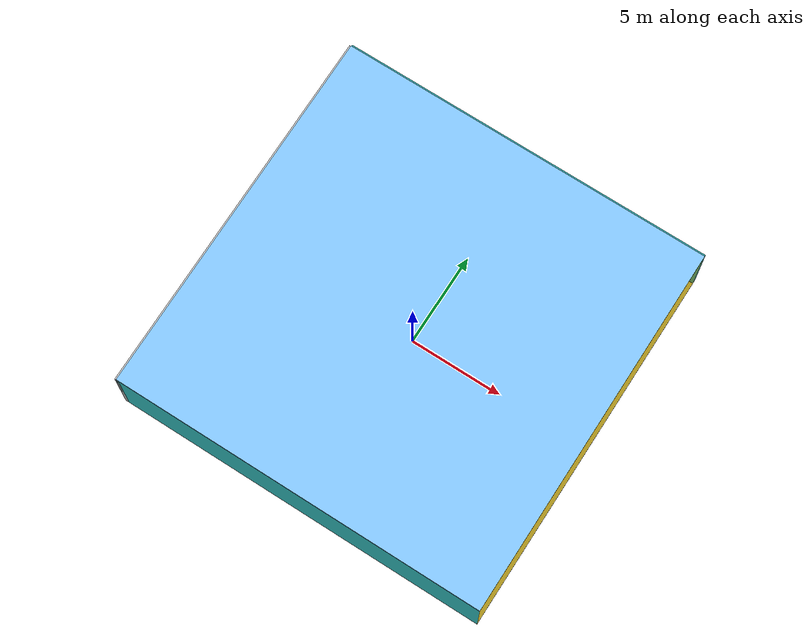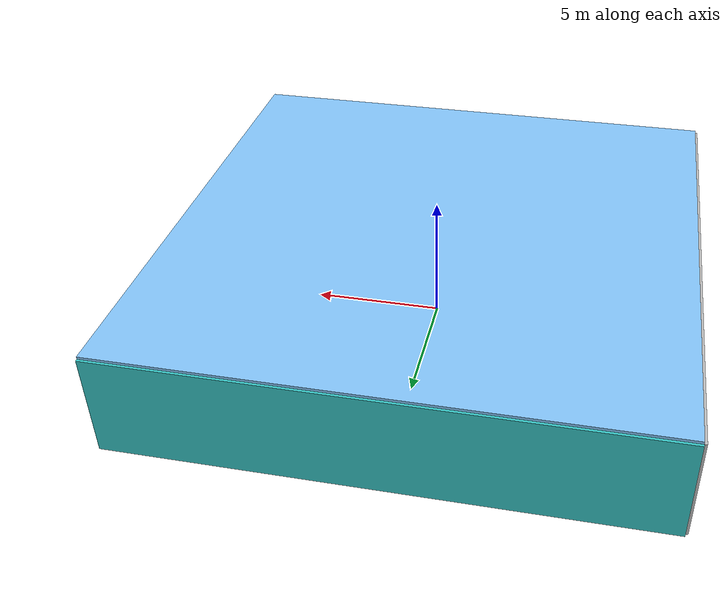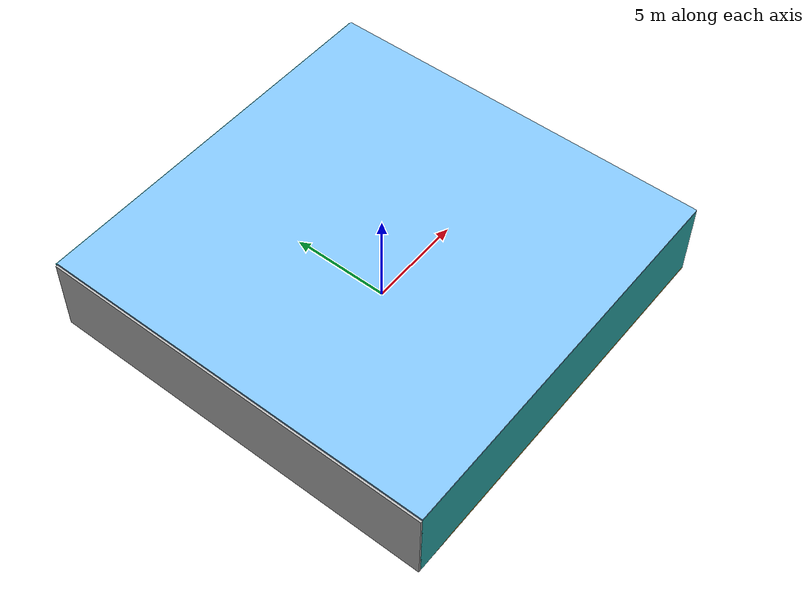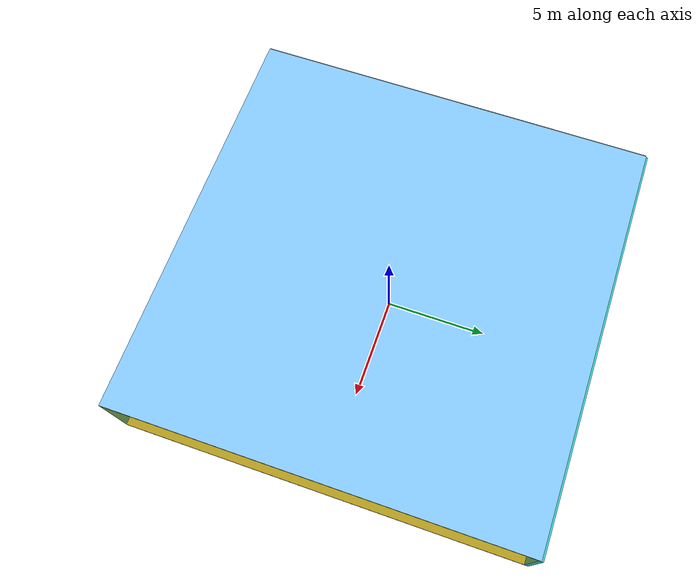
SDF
<sdf version="1.4">
 <world name="default">
  <physics type="ode">
   <max_step_size>0.001</max_step_size>
   <real_time_factor>1</real_time_factor>
   <real_time_update_rate>1000</real_time_update_rate>
   <gravity>0 0 -9.8</gravity>
  </physics>
  <scene><ambient>0.4 0.4 0.4 1</ambient><background>0.7 0.7 0.7 1</background><shadows>1</shadows></scene>
  <model name="Surrounding">
   <static>1</static>
   <link name="Ceiling">
    <collision name="Ceiling_Collision"><geometry><box><size>20 20 0.1</size></box></geometry></collision>
    <visual name="Ceiling_Visual">
     <geometry><box><size>20 20 0.1</size></box></geometry>
     <material>
      <script><uri>file://media/materials/scripts/gazebo.material</uri><name>Gazebo/SkyBlue</name></script>
     </material>
    </visual>
    <pose>0 0 4.05 0 0 0</pose>
   </link>
   <link name="Wall_South">
    <collision name="Wall_South_Collision">
     <geometry><box><size>20 0 4</size></box></geometry>
     <pose>0 0 2 0 -0 0</pose>
    </collision>
    <visual name="Wall_South_Visual">
     <pose>0 0 2 0 -0 0</pose>
     <geometry><box><size>20 0 4</size></box></geometry>
     <material>
      <script><uri>file://media/materials/scripts/gazebo.material</uri><name>Gazebo/Turquoise</name></script>
     </material>
    </visual>
    <velocity_decay><linear>0</linear><angular>0</angular></velocity_decay>
    <pose>0 -10 0 0 -0 0</pose>
   </link>
   <link name="Wall_East">
    <collision name="Wall_21_Collision">
     <geometry><box><size>20 0 4</size></box></geometry>
     <pose>0 0 2 0 -0 0</pose>
    </collision>
    <visual name="Wall_21_Visual">
     <pose>0 0 2 0 -0 0</pose>
     <geometry><box><size>20 0 4</size></box></geometry>
     <material>
      <script>
       <uri>file://media/materials/scripts/gazebo.material</uri>
       <name>Gazebo/YellowTransparent</name>
      </script>
     </material>
    </visual>
    <velocity_decay><linear>0</linear><angular>0</angular></velocity_decay>
    <pose>10 0 0 0 -0 1.5708</pose>
   </link>
   <link name="Wall_North">
    <collision name="Wall_22_Collision">
     <geometry><box><size>20 0.2 4</size></box></geometry>
     <pose>0 0 2 0 -0 0</pose>
    </collision>
    <visual name="Wall_22_Visual">
     <pose>0 0 2 0 -0 0</pose>
     <geometry><box><size>20 0.2 4</size></box></geometry>
     <material>
      <script><uri>file://media/materials/scripts/gazebo.material</uri><name>Gazebo/TurquoiseGlow</name></script>
     </material>
    </visual>
    <velocity_decay><linear>0</linear><angular>0</angular></velocity_decay>
    <pose>0 10 0 0 -0 0</pose>
   </link>
   <link name="Wall_West">
    <collision name="Wall_23_Collision">
     <geometry><box><size>20 0.2 4</size></box></geometry>
     <pose>0 0 2 0 -0 0</pose>
    </collision>
    <visual name="Wall_23_Visual">
     <pose>0 0 2 0 -0 0</pose>
     <geometry><box><size>20 0.2 4</size></box></geometry>
     <material>
      <script><uri>file://media/materials/scripts/gazebo.material</uri><name>Gazebo/LightOn</name></script>
     </material>
    </visual>
    <velocity_decay><linear>0</linear><angular>0</angular></velocity_decay>
    <pose>-10 0 0 0 0 -1.5708</pose>
   </link>
   <link name="Ground_link">
    <collision name="collision">
     <pose>0 0 .05 0 -0 0</pose>
     <geometry><box><size>20 20 0.1</size></box></geometry>
    </collision>
    <visual name="visual">
     <pose>0 0 .05 0 -0 0</pose>
     <geometry><box><size>20 20 0.1</size></box></geometry>
     <material>
      <script><uri>file://media/materials/scripts/gazebo.material</uri><name>Gazebo/Gold</name></script>
     </material>
    </visual>
   </link>
   <static>1</static>
  </model>
  <spherical_coordinates>
   <surface_model>EARTH_WGS84</surface_model>
   <latitude_deg>0</latitude_deg>
   <longitude_deg>0</longitude_deg>
   <elevation>0</elevation>
   <heading_deg>0</heading_deg>
  </spherical_coordinates>
  <light name="lightball_0" type="diffuse">
   <diffuse>0.8 0.8 0.8 1</diffuse>
   <specular>0.2 0.2 0.2 1</specular>
   <attenuation>
    <range>100</range>
    <constant>0.7</constant>
    <linear>0.01</linear>
    <quadratic>0.001</quadratic>
   </attenuation>
   <direction>-0.5 0.1 -0.9</direction>
   <pose>-5.04897318578 -3.00839160302 1.29479637311 0 0 0</pose>
  </light>
  <light name="lightball_1" type="diffuse">
   <diffuse>0.8 0.8 0.8 1</diffuse>
   <specular>0.2 0.2 0.2 1</specular>
   <attenuation>
    <range>100</range>
    <constant>0.7</constant>
    <linear>0.01</linear>
    <quadratic>0.001</quadratic>
   </attenuation>
   <direction>-0.5 0.1 -0.9</direction>
   <pose>1.08336553594 -1.95220505556 2.7823070621 0 0 0</pose>
  </light>
  <light name="lightball_2" type="diffuse">
   <diffuse>0.8 0.8 0.8 1</diffuse>
   <specular>0.2 0.2 0.2 1</specular>
   <attenuation>
    <range>100</range>
    <constant>0.7</constant>
    <linear>0.01</linear>
    <quadratic>0.001</quadratic>
   </attenuation>
   <direction>-0.5 0.1 -0.9</direction>
   <pose>-2.58410411074 -6.6038752395 1.08573583151 0 0 0</pose>
  </light>
  <light name="lightball_3" type="diffuse">
   <diffuse>0.8 0.8 0.8 1</diffuse>
   <specular>0.2 0.2 0.2 1</specular>
   <attenuation>
    <range>100</range>
    <constant>0.7</constant>
    <linear>0.01</linear>
    <quadratic>0.001</quadratic>
   </attenuation>
   <direction>-0.5 0.1 -0.9</direction>
   <pose>9.57340337228 7.38300543803 1.1758902337 0 0 0</pose>
  </light>
  <light name="lightball_4" type="diffuse">
   <diffuse>0.8 0.8 0.8 1</diffuse>
   <specular>0.2 0.2 0.2 1</specular>
   <attenuation>
    <range>100</range>
    <constant>0.7</constant>
    <linear>0.01</linear>
    <quadratic>0.001</quadratic>
   </attenuation>
   <direction>-0.5 0.1 -0.9</direction>
   <pose>2.64194511088 4.79640075639 1.58793728212 0 0 0</pose>
  </light>
  <light name="lightball_5" type="diffuse">
   <diffuse>0.8 0.8 0.8 1</diffuse>
   <specular>0.2 0.2 0.2 1</specular>
   <attenuation>
    <range>100</range>
    <constant>0.7</constant>
    <linear>0.01</linear>
    <quadratic>0.001</quadratic>
   </attenuation>
   <direction>-0.5 0.1 -0.9</direction>
   <pose>-7.20133079748 -1.40169584469 3.34527874181 0 0 0</pose>
  </light>
  <light name="lightball_6" type="diffuse">
   <diffuse>0.8 0.8 0.8 1</diffuse>
   <specular>0.2 0.2 0.2 1</specular>
   <attenuation>
    <range>100</range>
    <constant>0.7</constant>
    <linear>0.01</linear>
    <quadratic>0.001</quadratic>
   </attenuation>
   <direction>-0.5 0.1 -0.9</direction>
   <pose>8.47693043705 -0.878001552229 2.79942334679 0 0 0</pose>
  </light>
  <light name="lightball_7" type="diffuse">
   <diffuse>0.8 0.8 0.8 1</diffuse>
   <specular>0.2 0.2 0.2 1</specular>
   <attenuation>
    <range>100</range>
    <constant>0.7</constant>
    <linear>0.01</linear>
    <quadratic>0.001</quadratic>
   </attenuation>
   <direction>-0.5 0.1 -0.9</direction>
   <pose>-4.56817410453 7.28163587921 2.57429612227 0 0 0</pose>
  </light>
  <include><uri>model://cabinet</uri><pose>-7.07554707286 -7.3647901378 0 0 0 0.0162959785215</pose></include>
  <include><uri>model://table</uri><pose>-4.20352345168 -7.99280920546 0 0 0 2.9229830012</pose></include>
  <include><uri>model://cabinet</uri><pose>-4.00045505095 -3.85543387058 0 0 0 1.6916479969</pose></include>
  <include><uri>model://cabinet</uri><pose>-5.25423580254 2.28857255096 0 0 0 0.633946493169</pose></include>
  <include><uri>model://cabinet</uri><pose>-4.60243548328 5.18308593394 0 0 0 1.36740344059</pose></include>
  <include>
   <uri>model://robocup_3Dsim_goal</uri>
   <pose>-5.15341278444 7.98798839173 0 0 0 1.88904052604</pose>
  </include>
  <include>
   <uri>model://construction_cone</uri>
   <pose>-0.97244367365 4.38381711116 0 0 0 2.43042807381</pose>
  </include>
  <include><uri>model://cabinet</uri><pose>3.82925685834 -0.937079507207 0 0 0 1.23936674584</pose></include>
 </world>
</sdf>

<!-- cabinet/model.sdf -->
<sdf version="1.5">
  <model name="cabinet">
    <static>true</static>
    <link name="cabinet_bottom_plate">
      <inertial>
        <pose>0 0 -1 0 0 0</pose>
        <inertia>
          <ixx>2.050000</ixx>
          <ixy>0</ixy>
          <ixz>0</ixz>
          <iyy>2.050000</iyy>
          <iyz>0</iyz>
          <izz>2.050000</izz>
        </inertia>
        <mass>25.000000</mass>
      </inertial>
      <collision name="cabinet_bottom_plate_geom">
        <pose>0 0 0.010000 0 0 0</pose>
        <geometry>
          <box>
            <size>0.450000 0.450000 0.020000</size>
          </box>
        </geometry>
      </collision>
      <visual name="cabinet_bottom_plate_geom_visual">
        <pose>0 0 0.010000 0 0 0</pose>
        <geometry>
          <box>
            <size>0.450000 0.450000 0.020000</size>
          </box>
        </geometry>
        <material>
          <script>
            <uri>model://media/materials/scripts/gazebo.material</uri>
            <name>Gazebo/Wood</name>
          </script>
        </material>
      </visual>
      <collision name="cabinet_bottom_plate_geom_cabinet_back_plate">
        <pose>0.235000 0 0.510000 0 0 0</pose>
        <geometry>
          <box>
            <size>0.020000 0.450000 1.020000</size>
          </box>
        </geometry>
      </collision>
      <visual name="cabinet_bottom_plate_geom_cabinet_back_plate_visual">
        <pose>0.235000 0 0.510000 0 0 0</pose>
        <geometry>
          <box>
            <size>0.020000 0.450000 1.020000</size>
          </box>
        </geometry>
        <material>
          <script>
            <uri>model://media/materials/scripts/gazebo.material</uri>
            <name>Gazebo/Wood</name>
          </script>
        </material>
      </visual>
      <collision name="cabinet_bottom_plate_geom_cabinet_left_plate">
        <pose>0 0.235000 0.510000 0 0 0</pose>
        <geometry>
          <box>
            <size>0.450000 0.020000 1.020000</size>
          </box>
        </geometry>
      </collision>
      <visual name="cabinet_bottom_plate_geom_cabinet_left_plate_visual">
        <pose>0 0.235000 0.510000 0 0 0</pose>
        <geometry>
          <box>
            <size>0.450000 0.020000 1.020000</size>
          </box>
        </geometry>
        <material>
          <script>
            <uri>model://media/materials/scripts/gazebo.material</uri>
            <name>Gazebo/Wood</name>
          </script>
        </material>
      </visual>
      <collision name="cabinet_bottom_plate_geom_cabinet_middle_plate">
        <pose>0 0 0.510000 0 0 0</pose>
        <geometry>
          <box>
            <size>0.450000 0.450000 0.020000</size>
          </box>
        </geometry>
      </collision>
      <visual name="cabinet_bottom_plate_geom_cabinet_middle_plate_visual">
        <pose>0 0 0.510000 0 0 0</pose>
        <geometry>
          <box>
            <size>0.450000 0.450000 0.020000</size>
          </box>
        </geometry>
        <material>
          <script>
            <uri>model://media/materials/scripts/gazebo.material</uri>
            <name>Gazebo/Wood</name>
          </script>
        </material>
      </visual>
      <collision name="cabinet_bottom_plate_geom_cabinet_right_plate">
        <pose>0 -0.235000 0.510000 0 0 0</pose>
        <geometry>
          <box>
            <size>0.450000 0.020000 1.020000</size>
          </box>
        </geometry>
      </collision>
      <visual name="cabinet_bottom_plate_geom_cabinet_right_plate_visual">
        <pose>0 -0.235000 0.510000 0 0 0</pose>
        <geometry>
          <box>
            <size>0.450000 0.020000 1.020000</size>
          </box>
        </geometry>
        <material>
          <script>
            <uri>model://media/materials/scripts/gazebo.material</uri>
            <name>Gazebo/Wood</name>
          </script>
        </material>
      </visual>
      <collision name="cabinet_bottom_plate_geom_cabinet_top_plate">
        <pose>0 0 1.010000 0 0 0</pose>
        <geometry>
          <box>
            <size>0.450000 0.450000 0.020000</size>
          </box>
        </geometry>
      </collision>
      <visual name="cabinet_bottom_plate_geom_cabinet_top_plate_visual">
        <pose>0 0 1.010000 0 0 0</pose>
        <geometry>
          <box>
            <size>0.450000 0.450000 0.020000</size>
          </box>
        </geometry>
        <material>
          <script>
            <uri>model://media/materials/scripts/gazebo.material</uri>
            <name>Gazebo/Wood</name>
          </script>
        </material>
      </visual>
    </link>
  </model>
</sdf>

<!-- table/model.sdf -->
<sdf version="1.5">
  <model name="table">
    <static>true</static>
    <link name="link">
      <collision name="surface">
        <pose>0 0 1.0 0 0 0</pose>
        <geometry>
          <box>
            <size>1.5 0.8 0.03</size>
          </box>
        </geometry>
        <surface>
          <friction>
            <ode>
              <mu>0.6</mu>
              <mu2>0.6</mu2>
            </ode>
          </friction>
        </surface>
      </collision>
      <visual name="visual1">
        <pose>0 0 1.0 0 0 0</pose>
        <geometry>
          <box>
            <size>1.5 0.8 0.03</size>
          </box>
        </geometry>
        <material>
          <script>
            <uri>model://media/materials/scripts/gazebo.material</uri>
            <name>Gazebo/Wood</name>
          </script>
        </material>
      </visual>
      <collision name="front_left_leg">
        <pose>0.68 0.38 0.5 0 0 0</pose>
        <geometry>
          <cylinder>
            <radius>0.02</radius>
            <length>1.0</length>
          </cylinder>
        </geometry>
      </collision>
      <visual name="front_left_leg">
        <pose>0.68 0.38 0.5 0 0 0</pose>
        <geometry>
          <cylinder>
            <radius>0.02</radius>
            <length>1.0</length>
          </cylinder>
        </geometry>
        <material>
          <script>
            <uri>model://media/materials/scripts/gazebo.material</uri>
            <name>Gazebo/Grey</name>
          </script>
        </material>
      </visual>
      <collision name="front_right_leg">
        <pose>0.68 -0.38 0.5 0 0 0</pose>
        <geometry>
          <cylinder>
            <radius>0.02</radius>
            <length>1.0</length>
          </cylinder>
        </geometry>
      </collision>
      <visual name="front_right_leg">
        <pose>0.68 -0.38 0.5 0 0 0</pose>
        <geometry>
          <cylinder>
            <radius>0.02</radius>
            <length>1.0</length>
          </cylinder>
        </geometry>
        <material>
          <script>
            <uri>model://media/materials/scripts/gazebo.material</uri>
            <name>Gazebo/Grey</name>
          </script>
        </material>
      </visual>
      <collision name="back_right_leg">
        <pose>-0.68 -0.38 0.5 0 0 0</pose>
        <geometry>
          <cylinder>
            <radius>0.02</radius>
            <length>1.0</length>
          </cylinder>
        </geometry>
      </collision>
      <visual name="back_right_leg">
        <pose>-0.68 -0.38 0.5 0 0 0</pose>
        <geometry>
          <cylinder>
            <radius>0.02</radius>
            <length>1.0</length>
          </cylinder>
        </geometry>
        <material>
          <script>
            <uri>model://media/materials/scripts/gazebo.material</uri>
            <name>Gazebo/Grey</name>
          </script>
        </material>
      </visual>
      <collision name="back_left_leg">
        <pose>-0.68 0.38 0.5 0 0 0</pose>
        <geometry>
          <cylinder>
            <radius>0.02</radius>
            <length>1.0</length>
          </cylinder>
        </geometry>
      </collision>
      <visual name="back_left_leg">
        <pose>-0.68 0.38 0.5 0 0 0</pose>
        <geometry>
          <cylinder>
            <radius>0.02</radius>
            <length>1.0</length>
          </cylinder>
        </geometry>
        <material>
          <script>
            <uri>model://media/materials/scripts/gazebo.material</uri>
            <name>Gazebo/Grey</name>
          </script>
        </material>
      </visual>
    </link>
  </model>
</sdf>

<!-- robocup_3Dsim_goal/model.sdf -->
<sdf version="1.5">
  <model name="robocup_3d_goal">
    <static>true</static>
    <link name="left_post">
      <pose>0 1.05 0.45 0 0 0</pose>
      <collision name="collision">
        <geometry>
          <cylinder>
            <radius>0.05</radius>
            <length>0.9</length>
          </cylinder>
        </geometry>
      </collision>
      <visual name="visual">
        <geometry>
          <cylinder>
            <radius>0.05</radius>
            <length>0.9</length>
          </cylinder>
        </geometry>
        <material>
          <script>
            <uri>file://media/materials/scripts/gazebo.material</uri>
            <name>Gazebo/ZincYellow</name>
          </script>
        </material>
      </visual>
    </link>
    <link name="left_support_horiz_lower">
      <pose>0.30 1.05 0.01 0 0 0</pose>
      <collision name="collision">
        <geometry>
          <box>
            <size>0.50 0.02 0.02</size>
          </box>
        </geometry>
      </collision>
      <visual name="visual">
        <geometry>
          <box>
            <size>0.50 0.02 0.02</size>
          </box>
        </geometry>
        <material>
          <script>
            <uri>file://media/materials/scripts/gazebo.material</uri>
            <name>Gazebo/White</name>
          </script>
        </material>
      </visual>
    </link>
    <link name="left_support_horiz_upper">
      <pose>0.30 1.05 0.79 0 0 0</pose>
      <collision name="collision">
        <geometry>
          <box>
            <size>0.50 0.02 0.02</size>
          </box>
        </geometry>
      </collision>
      <visual name="visual">
        <geometry>
          <box>
            <size>0.50 0.02 0.02</size>
          </box>
        </geometry>
        <material>
          <script>
            <uri>file://media/materials/scripts/gazebo.material</uri>
            <name>Gazebo/White</name>
          </script>
        </material>
      </visual>
    </link>
    <link name="left_support_vertical">
      <pose>0.56 1.05 0.4 0 1.5708 0</pose>
      <collision name="collision">
        <geometry>
          <box>
            <size>0.80 0.02 0.02</size>
          </box>
        </geometry>
      </collision>
      <visual name="visual">
        <geometry>
          <box>
            <size>0.80 0.02 0.02</size>
          </box>
        </geometry>
        <material>
          <script>
            <uri>file://media/materials/scripts/gazebo.material</uri>
            <name>Gazebo/White</name>
          </script>
        </material>
      </visual>
    </link>
    <link name="right_support_horiz_lower">
      <pose>0.30 -1.05 0.01 0 0 0</pose>
      <collision name="collision">
        <geometry>
          <box>
            <size>0.50 0.02 0.02</size>
          </box>
        </geometry>
      </collision>
      <visual name="visual">
        <geometry>
          <box>
            <size>0.50 0.02 0.02</size>
          </box>
        </geometry>
        <material>
          <script>
            <uri>file://media/materials/scripts/gazebo.material</uri>
            <name>Gazebo/White</name>
          </script>
        </material>
      </visual>
    </link>
    <link name="right_support_horiz_upper">
      <pose>0.30 -1.05 0.79 0 0 0</pose>
      <collision name="collision">
        <geometry>
          <box>
            <size>0.50 0.02 0.02</size>
          </box>
        </geometry>
      </collision>
      <visual name="visual">
        <geometry>
          <box>
            <size>0.50 0.02 0.02</size>
          </box>
        </geometry>
        <material>
          <script>
            <uri>file://media/materials/scripts/gazebo.material</uri>
            <name>Gazebo/White</name>
          </script>
        </material>
      </visual>
    </link>
    <link name="right_support_vertical">
      <pose>0.56 -1.05 0.4 0 1.5708 0</pose>
      <collision name="collision">
        <geometry>
          <box>
            <size>0.80 0.02 0.02</size>
          </box>
        </geometry>
      </collision>
      <visual name="visual">
        <geometry>
          <box>
            <size>0.80 0.02 0.02</size>
          </box>
        </geometry>
        <material>
          <script>
            <uri>file://media/materials/scripts/gazebo.material</uri>
            <name>Gazebo/White</name>
          </script>
        </material>
      </visual>
    </link>
    <link name="center_support_horiz_lower">
      <pose>0.56 0 0.01 0 1.5708 0</pose>
      <collision name="collision">
        <geometry>
          <box>
            <size>0.02 2.08 0.02</size>
          </box>
        </geometry>
      </collision>
      <visual name="visual">
        <geometry>
          <box>
            <size>0.02 2.08 0.02</size>
          </box>
        </geometry>
        <material>
          <script>
            <uri>file://media/materials/scripts/gazebo.material</uri>
            <name>Gazebo/White</name>
          </script>
        </material>
      </visual>
    </link>
    <link name="center_support_horiz_upper">
      <pose>0.56 0 0.79 0 1.5708 0</pose>
      <collision name="collision">
        <geometry>
          <box>
            <size>0.02 2.08 0.02</size>
          </box>
        </geometry>
      </collision>
      <visual name="visual">
        <geometry>
          <box>
            <size>0.02 2.08 0.02</size>
          </box>
        </geometry>
        <material>
          <script>
            <uri>file://media/materials/scripts/gazebo.material</uri>
            <name>Gazebo/White</name>
          </script>
        </material>
      </visual>
    </link>
    <link name="right_post">
      <pose>0 -1.05 0.45 0 0 0</pose>
      <collision name="collision">
        <geometry>
          <cylinder>
            <radius>0.05</radius>
            <length>0.9</length>
          </cylinder>
        </geometry>
      </collision>
      <visual name="visual">
        <geometry>
          <cylinder>
            <radius>0.05</radius>
            <length>0.9</length>
          </cylinder>
        </geometry>
        <material>
          <script>
            <uri>file://media/materials/scripts/gazebo.material</uri>
            <name>Gazebo/ZincYellow</name>
          </script>
        </material>
      </visual>
    </link>
    <link name="crossbar">
      <pose>0 0 0.85 1.57 1.57 0</pose>
      <collision name="collision">
        <geometry>
          <cylinder>
            <radius>0.05</radius>
            <length>2.0</length>
          </cylinder>
        </geometry>
      </collision>
      <visual name="visual">
        <geometry>
          <cylinder>
            <radius>0.05</radius>
            <length>2.0</length>
          </cylinder>
        </geometry>
        <material>
          <script>
            <uri>file://media/materials/scripts/gazebo.material</uri>
            <name>Gazebo/ZincYellow</name>
          </script>
        </material>
      </visual>
    </link>
    <link name="center_net">
      <pose>0.56 0 0.40 0 0 0</pose>
      <collision name="collision">
        <geometry>
          <box>
            <size>0.01 2.1 0.80</size>
          </box>
        </geometry>
      </collision>
      <visual name="visual">
        <geometry>
          <box>
            <size>0.01 2.1 0.80</size>
          </box>
        </geometry>
        <material>
          <script>
            <uri>model://../model_source/models/robocup09_spl_field/materials/scripts/</uri>
            <uri>model://../model_source/models/robocup09_spl_field/materials/textures/</uri>
            <name>RoboCup/Net</name>
          </script>
        </material>
      </visual>
    </link>
    <link name="left_net">
      <pose>0.30 1.05 0.40 0 0 0</pose>
      <collision name="collision">
        <geometry>
          <box>
            <size>0.50 0.01 0.76</size>
          </box>
        </geometry>
      </collision>
      <visual name="visual">
        <geometry>
          <box>
            <size>0.50 0.01 0.76</size>
          </box>
        </geometry>
        <material>
          <script>
            <uri>model://../model_source/models/robocup09_spl_field/materials/scripts/</uri>
            <uri>model://../model_source/models/robocup09_spl_field/materials/textures/</uri>
            <name>RoboCup/Net</name>
          </script>
        </material>
      </visual>
    </link>
    <link name="right_net">
      <pose>0.30 -1.05 0.40 0 0 0</pose>
      <collision name="collision">
        <geometry>
          <box>
            <size>0.50 0.01 0.76</size>
          </box>
        </geometry>
      </collision>
      <visual name="visual">
        <geometry>
          <box>
            <size>0.50 0.01 0.76</size>
          </box>
        </geometry>
        <material>
          <script>
            <uri>model://../model_source/models/robocup09_spl_field/materials/scripts/</uri>
            <uri>model://../model_source/models/robocup09_spl_field/materials/textures/</uri>
            <name>RoboCup/Net</name>
          </script>
        </material>
      </visual>
    </link>
  </model>
</sdf>

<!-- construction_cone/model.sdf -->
<sdf version="1.5">
  <model name="Construction Cone">
    <link name="link">
      <collision name="collision">
        <geometry>
          <mesh>
            <scale>10 10 10</scale>
            <uri>file://isr-testbed/construction_cone/meshes/construction_cone.dae</uri>
          </mesh>
        </geometry>
      </collision>
      <visual name="visual">
        <geometry>
          <mesh>
            <scale>10 10 10</scale>
            <uri>file://isr-testbed/construction_cone/meshes/construction_cone.dae</uri>
          </mesh>
        </geometry>
      </visual>
    </link>
  </model>
</sdf>
